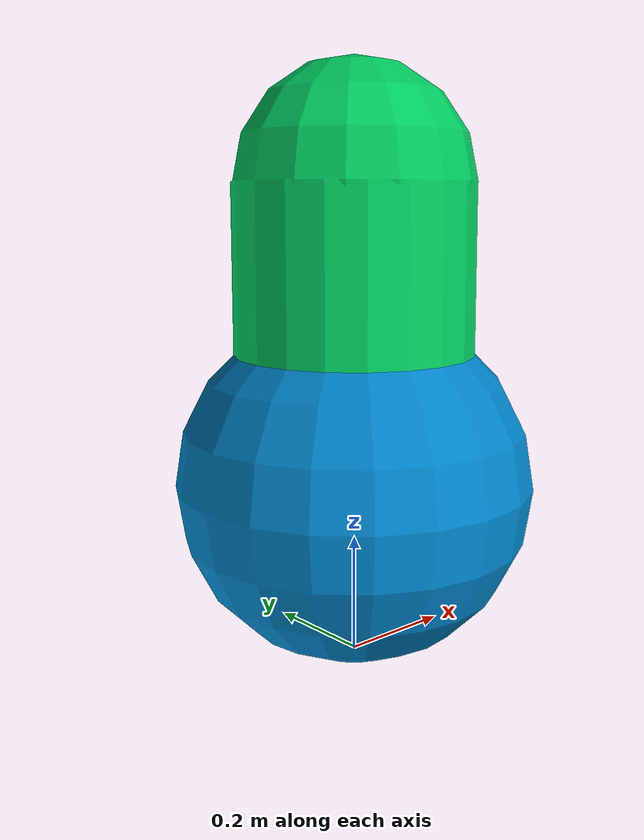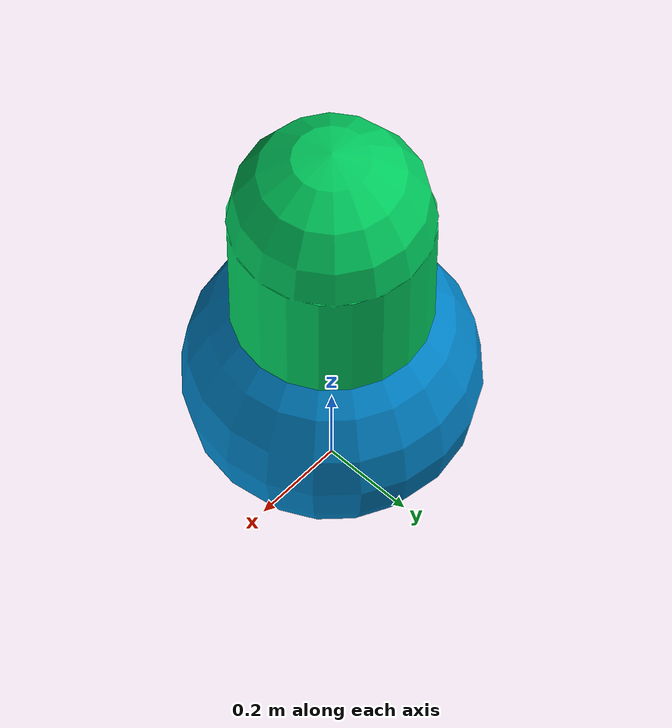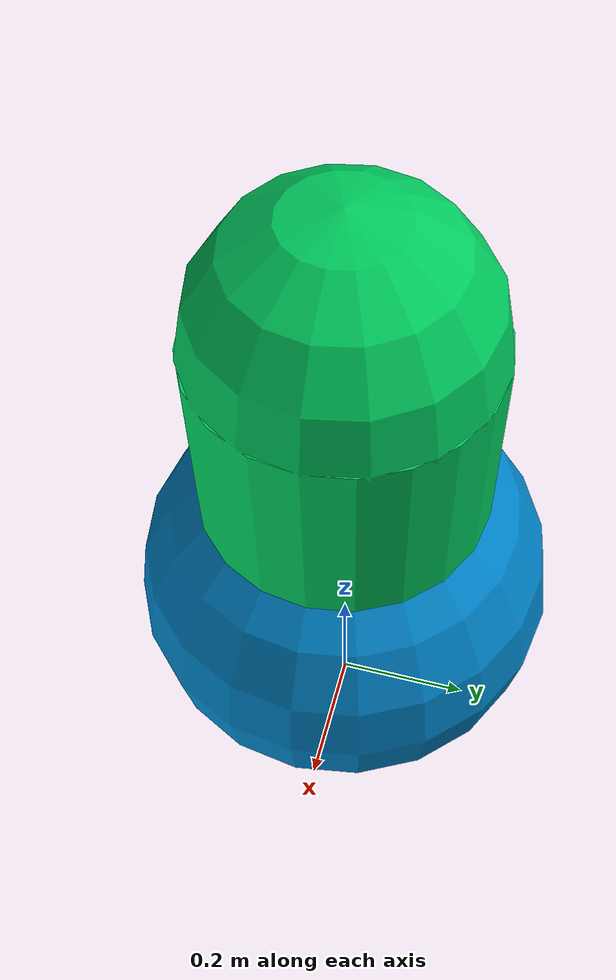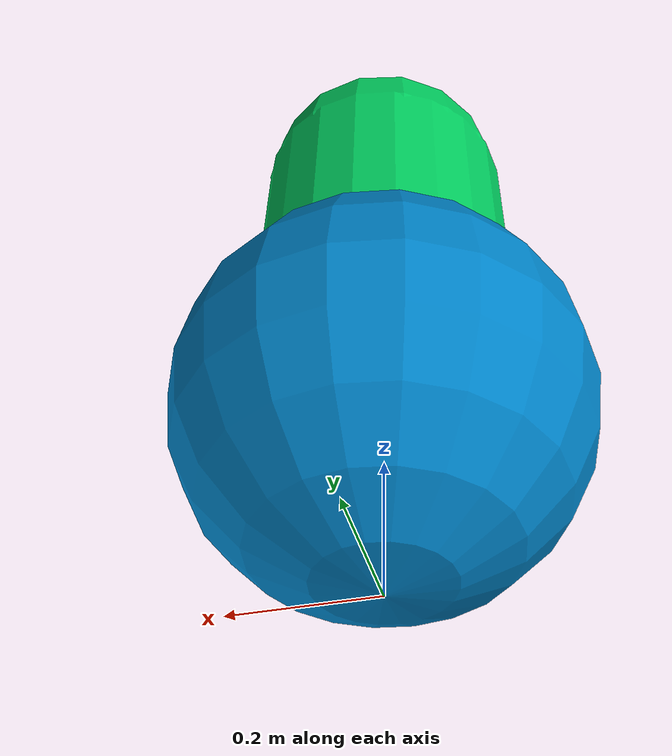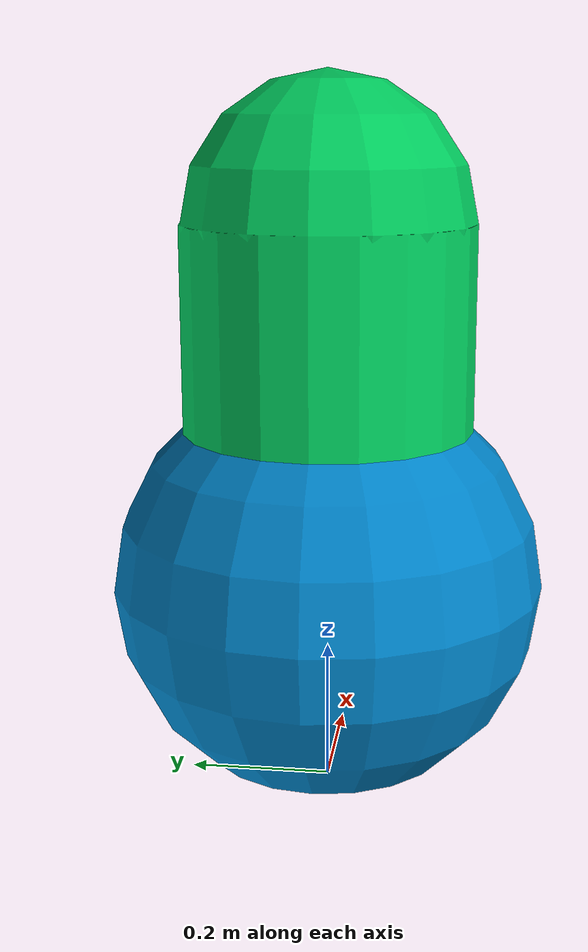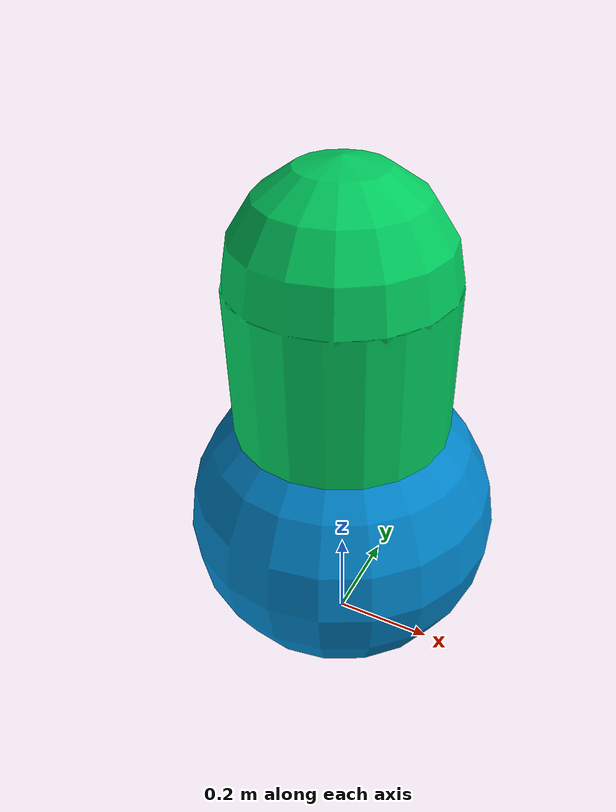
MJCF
<mujoco>
  <compiler inertiafromgeom="true" angle="radian" coordinate="local"/>
  <option timestep="0.01" gravity="0 0 -20" iterations="20" integrator="Euler"/>
  <default>
    <joint damping="1" limited='false'/>
    <geom friction=".5 .1 .1" density="1000" margin="0.002" condim="1" contype="2" conaffinity="1"/>
  </default>
  <asset>
    <material name="agent" specular="0.5" shininess="0.36" rgba="0.000000 0.520996 0.791299 1.000000"/>
    <material name="target" emission=".2" specular=".5" shininess=".7" reflectance="0" rgba="0 .8 .37 1"/>
    <material name="#" emission="0" specular="0" shininess="1" reflectance="1" rgba=".2 .2 .2 1"/>
    <material name=" " emission="0" specular="0" shininess="0" reflectance="0" rgba=".4 .4 .4 .8"/>
  </asset>
  <visual><headlight ambient=".4 .4 .4" diffuse=".8 .8 .8" specular="0.1 0.1 0.1"/></visual>
  <worldbody>
    <body name="particle" pos="0 0 0">
      <geom name="particle_geom" type="sphere" size=".3" pos="0 0 .3" contype="1" material="agent"/>
      <joint name="ball_x" type="slide" pos="0 0 0" axis="1 0 0"/>
      <joint name="ball_y" type="slide" pos="0 0 0" axis="0 1 0"/>
      <joint name="ball_z" type="slide" pos="0 0 0" axis="0 0 1"/>
    </body>
    <site name="target" material="target" type="capsule" pos="0 0 0.5" size="0.2 0.3" />
  </worldbody>
  <actuator>
    <motor name="motor_x" joint="ball_x" ctrlrange="-1.0 1.0" ctrllimited="true" gear="3000"/>
    <motor name="motor_y" joint="ball_y" ctrlrange="-1.0 1.0" ctrllimited="true" gear="3000"/>
  </actuator>
</mujoco>
